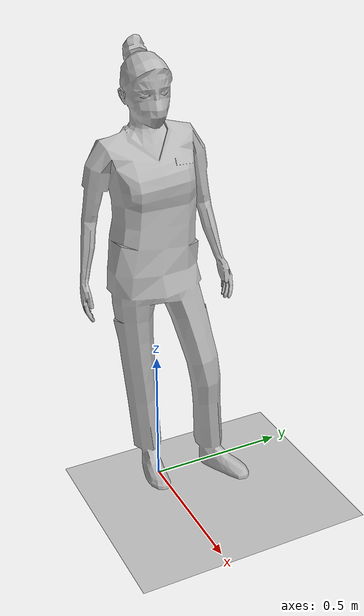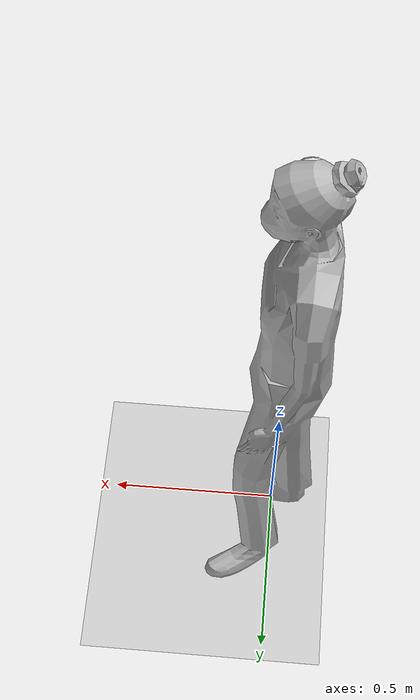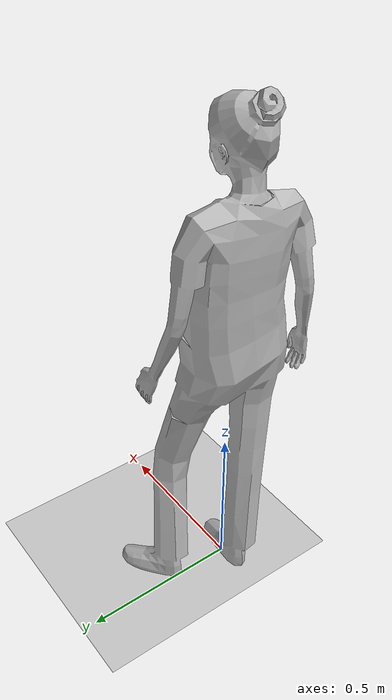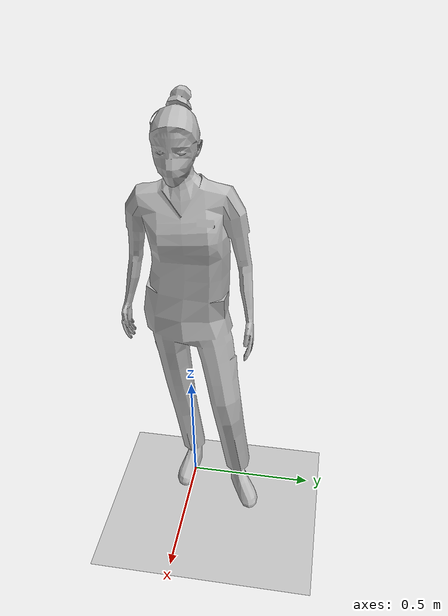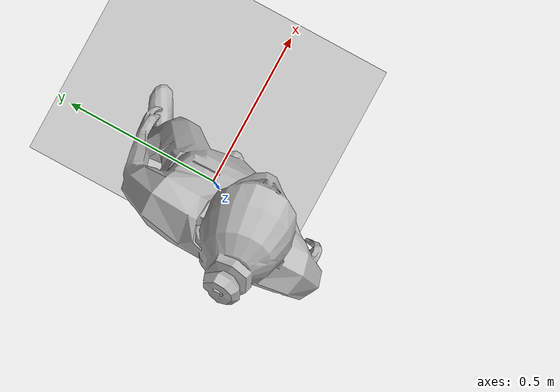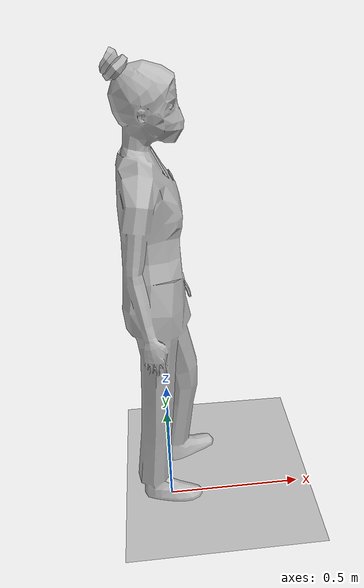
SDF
<?xml version="1.0" ?>
<sdf version="1.6">
  <world name="default">
    <physics type="ode">
    <gravity>0 0 -9.81</gravity>
      <ode>
        <solver>
          <type>quick</type>
          <iters>20</iters>
          <sor>1.0</sor>
        </solver>
        <constraints>
          <cfm>0.0</cfm>
          <erp>0.2</erp>
          <contact_max_correcting_vel>100.0</contact_max_correcting_vel>
          <contact_surface_layer>0.0</contact_surface_layer>
        </constraints>
      </ode>
  <real_time_update_rate>200</real_time_update_rate>
  <max_step_size>0.005</max_step_size> </physics>
    <scene>
      <ambient>0.8 0.8 0.8 1.0</ambient>
      <background>0.7 0.7 0.7 1.0</background>
      <shadows>true</shadows>
    </scene>

    <include>
      <uri>model://sun</uri>
      <pose>0 0 10 0 0 0.0</pose>
    </include>
    <include>
      <uri>model://ground_plane</uri>
    </include>

    <include>
      <name>scrubs</name>
      <uri>model://Scrubs</uri>
      <pose>0 0 0.01 0 0 0.0</pose>
    </include>
  </world>
</sdf>

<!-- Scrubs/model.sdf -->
<sdf version="1.6">
  <model name='Scrubs'>
   <static>true</static>
    <link name="body">
      <pose>0 0 0 0 0 0</pose>

      <visual name="visual">
        <geometry>
          <mesh>
            <uri>model://Scrubs/meshes/scrubs.obj</uri>
          </mesh>
        </geometry>
      </visual>

      <collision name="collision">
        <geometry>
          <mesh>
            <uri>model://Scrubs/meshes/Scrubs_Col.obj</uri>
          </mesh>
        </geometry>
      </collision>

    </link>
  </model>
</sdf>
